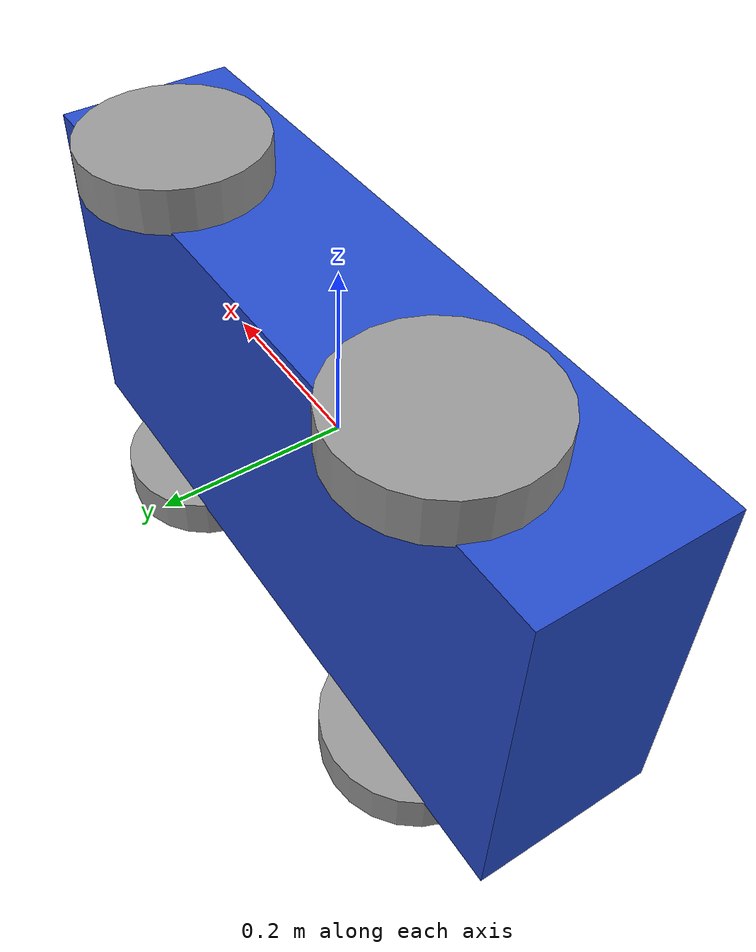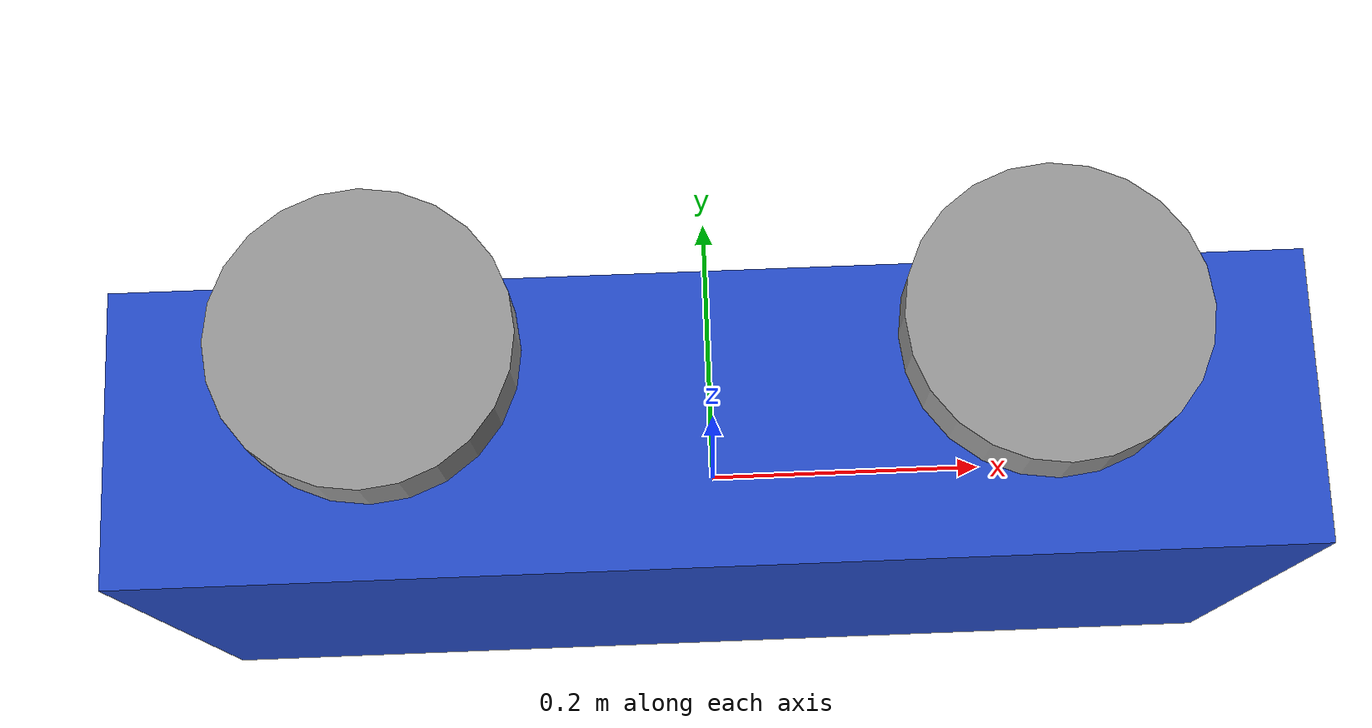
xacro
<?xml version="1.0"?>
<robot xmlns:xacro="http://www.ros.org/wiki/xacro">

    <xacro:property name="base_length" value="0.8" />
    <xacro:property name="base_width" value="0.2" />
    <xacro:property name="base_height" value="0.4" />
    <xacro:property name="wheel_radius" value="0.1" />
    <xacro:property name="wheel_length" value="0.05" />
    <xacro:property name="imu_length" value="0.03" />
    <xacro:property name="imu_width" value="0.05" />
    <xacro:property name="imu_height" value="0.01" />

    <link name="base_footprint" />

    <link name="base_link">
        <visual>
            <geometry>
                <box size="${base_length} ${base_width} ${base_height}" />
            </geometry>
            <origin xyz="0 0 ${base_length - 0.1}" rpy="0 0 0" />
            <material name="blue" />
        </visual>
        <collision>
            <geometry>
               <box size="${base_length} ${base_width} ${base_height}" />
            </geometry>
            <origin xyz="0 0 ${base_length - 0.1}" rpy="0 0 0" />
        </collision>
          <xacro:box_inertia m="5.0" l="${2*base_length}" w="${2*base_width}" h="${2*base_height}"
                           xyz="0 0 ${base_height / 2.0}" rpy="0 0 0" />
    </link>

        <!-- IMU Link Definition -->
    <link name="imu_link">
        <visual>
            <geometry>
                <box size="${imu_length} ${imu_width} ${imu_height}" />
            </geometry>
            <origin xyz="0 0 ${imu_length - 0.1}" rpy="0 0 0" />
            <material name="green" />
        </visual>
        <collision>
            <geometry>
               <box size="${imu_length} ${imu_width} ${imu_height}" />
            </geometry>
            <origin xyz="0 0 ${imu_length - 0.1}" rpy="0 0 0" />
          </collision>
          <xacro:box_inertia m="5.0" l="${2*imu_length}" w="${2*imu_width}" h="${2*imu_height}"
                           xyz="0 0 ${imu_height / 2.0}" rpy="0 0 0" />

    </link>

    <xacro:macro name="wheel_link" params="prefix">
        <link name="${prefix}_wheel_link">
            <visual>
                <geometry>
                    <cylinder radius="${wheel_radius}" length="${wheel_length}" />
                </geometry>
                <origin xyz="0 0 0" rpy="${pi / 2.0} 0 0" />
                <material name="grey" />
            </visual>
            <collision>
                <geometry>
                    <cylinder radius="${wheel_radius}" length="${wheel_length}" />
                </geometry>
                <origin xyz="0 0 0" rpy="${pi / 2.0} 0 0" />
            </collision>
            <xacro:cylinder_inertia m="1.0" r="${2*wheel_radius}" h="${2*wheel_length}"
                                    xyz="0 0 0" rpy="${pi / 2.0} 0 0" />
        </link>
    </xacro:macro>

    <xacro:wheel_link prefix="right" />
    <xacro:wheel_link prefix="left" />
    <xacro:wheel_link prefix="right_rear" />
    <xacro:wheel_link prefix="left_rear" />

    <joint name="base_joint" type="fixed">
        <parent link="base_footprint" />
        <child link="base_link" />
        <origin xyz="0 0 ${-base_length + 0.1}" rpy="0 0 0"/>
    </joint>

    <joint name="base_imu_joint" type="fixed">
        <parent link="base_link" />
        <child link="imu_link" />
        <origin xyz="0 0 0.8" rpy="0 0 0" />
    </joint>

    <joint name="base_right_wheel_joint" type="continuous">
        <parent link="base_link" />
        <child link="right_wheel_link" />
        <origin xyz="0.225 0.05 0.4775" rpy="${pi / 2.0} 0 0" />
        <axis xyz="0 1 0" />
    </joint>

    <joint name="base_left_wheel_joint" type="continuous">
        <parent link="base_link" />
        <child link="left_wheel_link" />
        <origin xyz="0.225 ${wheel_length} 0.9225" rpy="${pi / 2.0} 0 0" />   ${wheel_length}
        <axis xyz="0 1 0" />
    </joint>

    <joint name="base_right_rear_wheel_joint" type="continuous">
        <parent link="base_link" />
        <child link="right_rear_wheel_link" />
        <origin xyz="-0.225 0.05 0.4775" rpy="${pi / 2.0} 0 0" />
        <axis xyz="0 1 0" />
    </joint>

    <joint name="base_left_rear_wheel_joint" type="continuous">
        <parent link="base_link" />
        <child link="left_rear_wheel_link" />
        <origin xyz="-0.225 0.05 0.9225" rpy="${pi / 2.0} 0 0" />
        <axis xyz="0 1 0" />
    </joint>

</robot>
